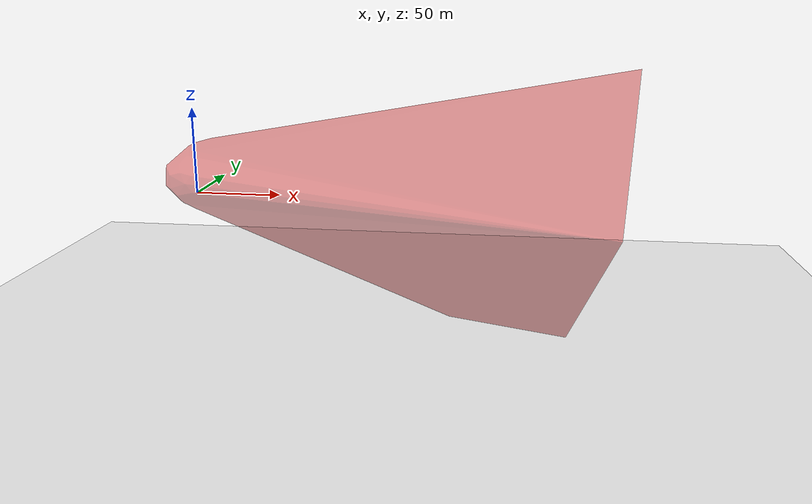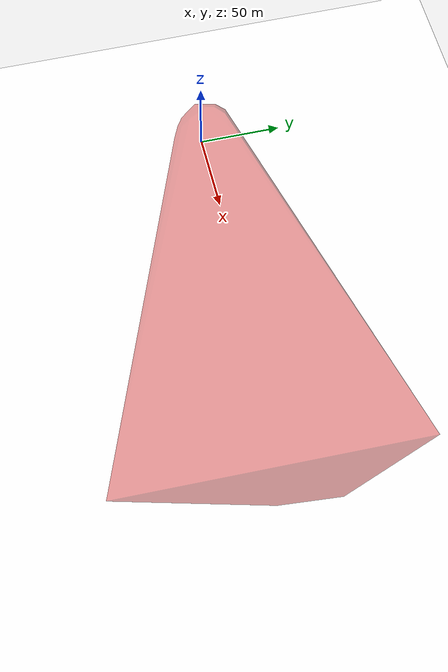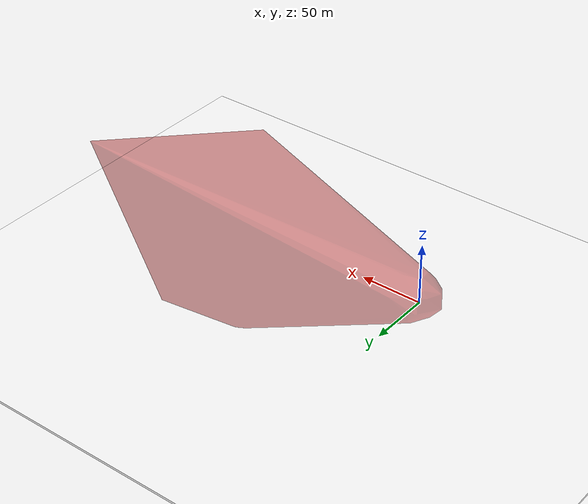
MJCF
<mujoco>
    <option density="1.2" viscosity="2e-05" wind="0 0 0"/>
    <worldbody>
        <light name="top" pos="0 0 5"/>
        <!-- Body -->

    <body name="body" pos="0 0 1" euler="0 0 0">
        <freejoint/>
        <!-- Main Wing -->
        <geom name="stl-wing"  density="1.67" rgba="0.8 0.2 0.2 0.5" type="mesh" mesh="stl-wing-mesh"/>
        <camera name="fixed" pos="-100 -100 -10" xyaxes="1 0 0 0 1 2"/>
        <camera name="track" pos="0 0 0" xyaxes="1 2 0 0 1 2" mode="track"/>
    </body>

        <!-- Landing Platform -->
        <body name="platform" pos="0 0 0">
            <geom name="platform-geom" type="box" size="1500 1500 1" rgba="1 1 1 1" pos="0 0 -80"/>
        </body>
    </worldbody>

            <asset>
                <mesh name="stl-wing-mesh" vertex="1.1249999999999996 -1.5750000000000006 10.124999999999991 1.6750000000000007 -2.475000000000001 -6.524999999999997 4.925000000000001 0.2249999999999995 -0.6749999999999996 -4.875000000000001 -0.2250000000000005 0.6750000000000004 6.024999999999997 -6.0749999999999975 4.725 11.974999999999989 -5.624999999999998 -6.0749999999999975 -0.17499999999999802 -8.224999999999994 -6.074999999999998 214.9249999999965 31.025000000000077 -110.9249999999991 29.075000000000067 7.724999999999994 -5.624999999999998 -7.3749999999999964 10.974999999999989 19.125 9.724999999999993 -1.525 -11.024999999999991 1.5249999999999986 2.0750000000000006 10.57499999999999 35.175000000000104 24.57500000000004 10.124999999999993 -9.024999999999995 -8.274999999999995 4.725 -10.47499999999999 4.775 2.9250000000000003 2.025 7.024999999999997 12.374999999999988 16.424999999999983 -2.0750000000000015 2.925000000000001 11.47499999999999 3.2249999999999996 2.025 2.475 -3.6250000000000027 -2.925000000000001 -3.8250000000000024 -0.12499999999999908 -5.624999999999998 -1.1249999999999996 -4.725 -7.374999999999996 -0.5749999999999995 9.224999999999993 1.1749999999999994 6.724999999999996 13.724999999999987 10.174999999999992 -5.325 7.874999999999995 -1.0749999999999997 4.674999999999999 -0.2250000000000004 13.774999999999986 9.724999999999993 -2.025 -10.074999999999992 1.6250000000000004 -6.424999999999997 -4.675 15.574999999999985 -11.274999999999991 3.4250000000000003 20.07500000000001 0.07499999999999893 0.27500000000000036 5.225000000000001 0.6249999999999984 10.624999999999991 -4.2250000000000005 -2.4250000000000003 -2.4250000000000003 14.574999999999983 7.024999999999997 2.525000000000001 1.4249999999999994 4.775 0.7250000000000003 5.824999999999999 -11.424999999999992 10.174999999999992 5.275 2.0750000000000006 -4.2250000000000005 -5.624999999999999 12.874999999999988 8.824999999999994 -7.874999999999995 17.274999999999988 6.5749999999999975 -0.6749999999999996 16.274999999999984 -5.125 -9.674999999999992 -0.9250000000000008 1.1750000000000003 3.3750000000000013 -2.3749999999999996 4.325000000000001 2.025 8.774999999999993 -10.47499999999999 -0.5749999999999995 1.5749999999999997 6.174999999999999 11.674999999999988 11.924999999999988 -7.774999999999995 -5.325000000000001 6.074999999999999 -4.625 18.624999999999996 -3.375000000000002 7.0749999999999975 9.724999999999993 11.024999999999991 10.674999999999992 4.775 1.225 6.174999999999999 10.624999999999991 -3.1750000000000016 6.174999999999998 3.8750000000000004 4.125 -1.4749999999999996 4.775 6.024999999999997 8.424999999999995 -6.924999999999997 -8.274999999999995 17.424999999999994 1.5249999999999986 -8.274999999999995 -0.5749999999999995 0.07499999999999893 13.324999999999989 -9.124999999999993 -0.47500000000000075 14.674999999999986 17.424999999999994 0.3250000000000005 0.27500000000000024 4.825 0.22499999999999862 14.224999999999985 -9.124999999999993 2.475 14.574999999999983 -3.7250000000000005 -4.725 0.9749999999999989 21.47500000000002 -15.974999999999985 5.8249999999999975 6.624999999999998 6.974999999999998 -16.324999999999985 11.57499999999999 9.674999999999992 9.674999999999994 1.725 1.225000000000001 4.725 -7.274999999999997 8.974999999999993 6.974999999999996 16.574999999999985 20.32500000000001 -1.1250000000000004 -11.77499999999999 -0.7250000000000012 -0.6749999999999996 13.874999999999986 -6.024999999999998 1.5750000000000006 2.1750000000000003 11.97499999999999 -0.5749999999999986 -6.8249999999999975 1.1750000000000003 -6.324999999999998 -4.125000000000001 -12.774999999999988 1.8749999999999991 -5.0249999999999995 6.5749999999999975 6.474999999999996 3.975000000000001 -1.975 -5.125 3.0750000000000006 -6.574999999999999 9.724999999999994 3.975000000000001 -1.2750000000000012 -1.525 -9.524999999999993 10.77499999999999 11.07499999999999 -0.5249999999999998 20.575000000000014 -1.975000000000001 -10.874999999999991 -2.475 11.524999999999991 7.1249999999999964 13.274999999999986 -12.87499999999999 -5.474999999999999 -13.724999999999985 4.125 3.0750000000000006 -3.3750000000000013 8.074999999999994 26.025000000000045 2.925000000000002 10.224999999999993 0.3749999999999999 -4.7250000000000005 -4.725 3.575 -8.674999999999994 -8.774999999999993 5.374999999999999 4.924999999999999 -4.725 -4.975 12.674999999999988 -3.8250000000000015 7.174999999999997 -1.6250000000000022 -1.1249999999999996 -9.024999999999995 18.275 4.725 -2.2750000000000012 -1.525 7.524999999999997 9.874999999999991 3.8750000000000013 -4.075000000000001 -4.525000000000002 3.8750000000000013 15.374999999999984 4.025 41.675000000000146 -4.775000000000001 -5.874999999999998 2.0750000000000006 2.975000000000001 17.974999999999994 -4.775000000000001 16.024999999999984 13.024999999999988 -8.024999999999997 6.124999999999998 -4.525000000000001 -7.674999999999997 0.27500000000000036 6.274999999999997 0.32500000000000007 11.97499999999999 -2.2750000000000012 15.974999999999982 15.124999999999986 -9.024999999999995 1.1249999999999996 -1.6250000000000018 5.8249999999999975 3.375000000000002 -1.2750000000000012 -0.47500000000000087 2.0250000000000017 0.8749999999999991 -9.024999999999995 -2.475000000000001 9.324999999999994 6.274999999999997 11.924999999999988 -2.0250000000000017 -0.8750000000000001 3.0250000000000017 11.924999999999988 12.17499999999999 14.374999999999986 5.624999999999998 -8.974999999999994 1.424999999999999 0.22499999999999962 0.475 1.5249999999999986 2.475 3.1750000000000007 14.224999999999985 8.324999999999994 0.47499999999999987 18.275 4.825000000000001 -8.974999999999994 18.725 -14.874999999999986 -1.7750000000000012 -18.174999999999997 0.07499999999999893 14.874999999999986 13.324999999999989 11.424999999999988 -16.174999999999983 7.474999999999996 14.674999999999985 1.8250000000000002 12.324999999999987 4.775 -9.874999999999993 4.574999999999999 4.775 6.3249999999999975 10.77499999999999 -3.775000000000001 10.82499999999999 7.974999999999996 9.274999999999993 -2.6750000000000016 17.324999999999992 10.174999999999992 11.724999999999989 -3.8250000000000006 10.974999999999989 0.024999999999999967 15.074999999999983 3.2249999999999996 9.474999999999993 11.924999999999988 -18.474999999999998 9.024999999999993 11.474999999999989 22.825000000000028 11.724999999999989 6.524999999999997 9.674999999999992 -8.924999999999995 4.375000000000001 0.2250000000000004 -9.824999999999994 -1.375 -1.1250000000000004 12.674999999999986 -6.224999999999999 4.275 12.224999999999987 -8.824999999999996 13.274999999999986 4.574999999999999 -0.6249999999999998 -1.1250000000000004 15.374999999999984 20.07500000000001 16.524999999999988 4.125 -9.174999999999994 -3.625000000000001 -5.325 9.724999999999993 -5.325000000000001 4.574999999999999 -10.524999999999991 18.174999999999994 4.125 8.374999999999995 14.674999999999985 14.024999999999984 4.225 11.524999999999991 14.924999999999983 -10.274999999999993 -1.0749999999999997 -2.6250000000000018 -0.47500000000000087 -6.474999999999998 -5.7749999999999995 -4.175000000000001 17.824999999999996 5.924999999999997 -5.174999999999999 6.124999999999998 9.524999999999991 -5.624999999999999 -8.374999999999996 4.125 -5.624999999999998 10.87499999999999 10.874999999999991 -2.475 7.624999999999995 -2.6250000000000013 -1.5749999999999997 5.725 4.125 -4.275000000000001 -10.57499999999999 -1.6750000000000016 -5.074999999999999 6.974999999999996 6.874999999999996 7.624999999999995 -9.224999999999994 1.4749999999999996 -9.824999999999994 -4.275 5.974999999999998 0.17499999999999846 -4.725 5.524999999999998 21.42500000000002 15.524999999999983 24.425000000000036 4.325000000000001 -3.2750000000000004 22.175000000000022 6.124999999999998 5.8249999999999975 0.12499999999999908 26.825000000000053 1.8749999999999982 17.22499999999999 12.424999999999988 8.724999999999993 1.4749999999999996 14.674999999999986 9.724999999999993 0.12499999999999906 32.57500000000008 14.674999999999985 18.124999999999996 7.724999999999996 8.374999999999995 3.7249999999999996 20.22500000000001 -8.274999999999995 4.625 -1.9249999999999998 3.425000000000001 -6.624999999999998 -4.725000000000001 1.1750000000000003 -0.7750000000000005 2.0250000000000017 -10.174999999999994 -0.7750000000000009 -2.025000000000001 -3.0750000000000015 1.0249999999999986 7.424999999999995 4.475 1.4749999999999996 0.2249999999999995 -4.175000000000001 -9.774999999999993 2.9250000000000003 -8.324999999999994 4.674999999999999 -1.025 -1.1249999999999996 15.024999999999983 -7.674999999999997 5.174999999999999 -0.2750000000000017 -4.875000000000002 0.2250000000000004 -3.875000000000002 -2.975000000000002 14.174999999999985 6.474999999999996 10.174999999999992 3.3750000000000013 10.974999999999989 3.425000000000001 -5.074999999999999 -6.574999999999999 -13.224999999999987 -0.024999999999999856 5.5749999999999975 8.374999999999995 -11.174999999999994 5.124999999999998 -1.0749999999999997 3.7749999999999995 4.674999999999999 -7.824999999999996 -4.675 3.7749999999999995 -2.9750000000000023 12.874999999999988 8.724999999999993 11.77499999999999 -6.474999999999997 10.07499999999999 1.7749999999999995 6.5749999999999975 9.624999999999991 -2.375 -6.924999999999996 -7.024999999999999 -9.674999999999992 2.0750000000000006 0.17499999999999846 -12.374999999999988 4.674999999999999 -5.675 -4.725 -4.4250000000000025 6.024999999999997 10.57499999999999 20.22500000000001 7.374999999999995 19.575000000000003 9.324999999999994 14.124999999999984 5.175 13.724999999999985 5.174999999999999 -12.724999999999989 4.275 5.174999999999999 -0.9249999999999999 -8.324999999999994 3.3750000000000004 -2.175000000000001 -2.474999999999999 17.77499999999999 5.124999999999998 -12.374999999999988 1.5749999999999997 -3.775000000000001 -6.524999999999999 3.3750000000000004 15.124999999999986 -6.8749999999999964 -1.1250000000000004 -6.924999999999997 8.074999999999994 2.9250000000000003 -7.824999999999996 1.4249999999999994 4.275 22.325000000000024 5.124999999999997 -5.175000000000001 9.274999999999993 3.8750000000000013 15.524999999999983 11.424999999999988 -8.274999999999995 -1.1250000000000004 -6.674999999999998 -4.2250000000000005 -6.524999999999999 -0.47500000000000087 3.8750000000000013 6.524999999999997 17.424999999999994 13.774999999999988 4.275 1.5749999999999997 2.975000000000001 10.57499999999999 -1.1250000000000004 -5.225000000000001 -2.025000000000001 3.3750000000000004 -4.875000000000002 -1.1250000000000004 -8.774999999999993 2.2249999999999996 1.1249999999999996 -0.6750000000000005 -16.774999999999988 7.874999999999995 7.424999999999995 -2.925000000000001 -1.0750000000000006 -12.274999999999988 -3.8250000000000006 8.824999999999996 1.7749999999999995 -3.8250000000000024 3.425000000000001 33.825000000000095 -9.224999999999993 7.474999999999996 -6.574999999999999 -4.275 6.124999999999998 7.924999999999995 10.574999999999994 9.274999999999993 -2.425000000000001 2.1250000000000013 4.325000000000001 9.724999999999993 -7.674999999999997 -5.124999999999999 11.07499999999999 -2.1750000000000016 12.42499999999999 2.525 -6.124999999999999 13.324999999999989 2.525000000000001 -1.525 9.274999999999993 26.725000000000044 8.824999999999994 12.42499999999999 3.2249999999999996 10.624999999999991 25.02500000000004 8.524999999999993 3.425000000000001 17.374999999999993 -1.0249999999999995 13.324999999999987 9.274999999999995 3.8250000000000006 15.574999999999985 7.024999999999997 0.2250000000000004 6.024999999999997 3.425000000000001 15.524999999999983 -7.124999999999998 12.87499999999999 17.77499999999999 17.07499999999999 10.624999999999993 8.774999999999993 -4.625 -3.3250000000000006 4.275000000000001 -0.2250000000000005 14.724999999999985 -0.12499999999999953 5.174999999999999 -2.8249999999999997 -0.47500000000000087 -5.175 19.675000000000008 9.074999999999992 7.424999999999995 5.725 6.024999999999997 7.8749999999999964 4.375000000000002 11.974999999999989 -9.224999999999993 3.475000000000002 3.8750000000000013 4.375000000000001 -2.8249999999999993 16.474999999999987 -0.9249999999999999 17.874999999999996 -0.6249999999999997 -12.974999999999989 3.0250000000000017 -7.3749999999999964 -3.875000000000002 -6.424999999999997 -10.97499999999999 12.87499999999999 6.624999999999998 -4.325000000000002 -10.524999999999991 3.925000000000002 5.924999999999997 11.07499999999999 -5.974999999999998 16.174999999999983 8.824999999999996 9.774999999999995 1.225000000000001 4.325000000000001 0.3250000000000014 -8.774999999999993 -9.174999999999994 -1.024999999999999 -1.1250000000000004 -3.875000000000003 10.224999999999993 -6.074999999999998 -2.6250000000000013 8.874999999999995 2.925000000000001 12.574999999999987 8.874999999999995 -6.974999999999996 9.774999999999993 -0.5749999999999986 0.2250000000000005 2.025 9.374999999999995 -1.025 5.624999999999998 24.67500000000004 15.724999999999984 7.874999999999995 18.375 11.32499999999999 1.5750000000000006 16.124999999999986 12.324999999999987 -5.175 -5.474999999999997 -6.924999999999997 -5.624999999999998 17.474999999999994 -8.724999999999994 -1.4749999999999996 8.924999999999995 0.7250000000000003 7.174999999999995 -6.3749999999999964 -1.0749999999999997 3.2249999999999996 -2.3249999999999984 6.124999999999998 6.024999999999997 7.124999999999998 -1.975 6.574999999999999 0.8250000000000021 -4.775000000000001 11.074999999999992 1.7250000000000019 -5.325000000000001 5.674999999999999 8.924999999999997 -5.424999999999999 -1.0749999999999997 -1.8749999999999987 2.1250000000000013 14.674999999999986 2.175000000000002 -2.475 17.824999999999996 11.174999999999992 7.424999999999995 -0.7250000000000011 -9.524999999999991 6.524999999999997 -3.9750000000000028 -3.675 -14.174999999999986 8.974999999999994 4.4250000000000025 1.1250000000000004 11.124999999999991 -2.7749999999999995 4.725 -16.874999999999986 9.424999999999995 2.1250000000000004 -3.8250000000000006 8.074999999999998 6.274999999999998 -1.1250000000000004 6.275 -3.5250000000000026 -1.1249999999999996 5.825000000000001 -2.0750000000000015 11.47499999999999 22.92500000000003 -5.574999999999998 -3.8250000000000006 10.324999999999994 3.8750000000000013 18.775000000000002 5.825000000000001 10.174999999999994 14.374999999999984 9.424999999999995 -1.0750000000000006 2.3249999999999993 13.924999999999988 4.325000000000001 10.07499999999999 14.824999999999987 -6.924999999999996 12.87499999999999 4.025000000000004 -10.624999999999993 15.574999999999985 3.5750000000000037 -7.124999999999998 -9.624999999999993 9.874999999999995 3.125 -2.8750000000000004 -1.8249999999999975 4.825000000000001 9.724999999999993 2.6750000000000034 3.3750000000000013 9.274999999999995 10.774999999999993 11.47499999999999 8.724999999999993 1.7750000000000048 -4.725000000000001 4.125 2.6750000000000034 20.92500000000001 13.024999999999986 13.92499999999999 11.474999999999989 2.5750000000000015 3.5750000000000037 -7.874999999999995 13.274999999999986 -2.674999999999997 0.32500000000000095 7.424999999999995 -4.024999999999999 0.8749999999999992 -1.5749999999999997 9.024999999999997 9.97499999999999 -6.074999999999997 -6.724999999999994 -1.1750000000000016 16.424999999999983 -5.374999999999996 231.57499999999607 -105.97499999999923 9.024999999999997 -0.17499999999999966 5.275 0.02500000000000352 -0.17499999999999977 15.274999999999984 20.275000000000013 -0.6249999999999998 8.174999999999994 -1.3249999999999966 -9.624999999999993 14.124999999999984 4.525000000000004 8.374999999999995 12.874999999999988 4.975000000000003 -6.574999999999999 11.07499999999999 18.475 -4.875000000000002 9.274999999999993 14.42499999999999 -1.825000000000001 -6.474999999999997 -4.924999999999997 8.874999999999995 21.87500000000002 11.274999999999993 -9.674999999999992 -3.3250000000000006 4.975000000000003 7.8749999999999964 14.574999999999983 8.124999999999998 11.47499999999999 14.024999999999986 14.42499999999999 10.574999999999992 2.6750000000000007 12.174999999999992 5.624999999999999 -7.324999999999996 -3.1249999999999973 -3.8250000000000006 -0.2250000000000005 9.524999999999997 1.6750000000000012 14.624999999999984 11.774999999999993 -1.825000000000001 2.0250000000000017 -5.774999999999995 6.3749999999999964 6.0749999999999975 23.475000000000033 7.824999999999994 -2.925000000000001 0.9750000000000042 5.674999999999999 -5.174999999999999 -6.224999999999994 8.824999999999994 -3.2750000000000004 2.775000000000005 -5.574999999999999 13.924999999999985 3.225000000000005 10.174999999999994 15.374999999999984 11.324999999999994 11.974999999999989 0.17499999999999846 11.774999999999993 -5.574999999999998 2.975000000000001 14.02499999999999 18.174999999999994 13.324999999999987 8.624999999999998 1.424999999999999 8.374999999999995 -15.22499999999998 15.274999999999984 2.525000000000001 15.374999999999988 -1.4749999999999992 11.52499999999999 15.374999999999988 2.9250000000000003 -3.3250000000000015 9.524999999999997 -1.5750000000000006 11.874999999999988 2.3250000000000046 4.275000000000001 4.574999999999999 24.825000000000042 -8.774999999999993 17.52499999999999 15.824999999999987 11.924999999999988 -0.575 -11.174999999999986 -9.674999999999992 9.674999999999992 10.924999999999995 8.874999999999995 9.674999999999992 2.8250000000000055 -0.9250000000000008 0.6749999999999996 20.825000000000017 12.224999999999987 -1.5749999999999997 5.975000000000003 -0.2750000000000016 10.124999999999991 19.025000000000006 0.7250000000000003 6.524999999999997 11.824999999999994 16.024999999999984 13.824999999999989 30.72500000000008 11.97499999999999 16.174999999999983 8.225 2.0750000000000006 13.124999999999986 7.775 7.024999999999996 10.974999999999989 19.025000000000006 0.7250000000000003 2.0750000000000006 4.175000000000006 10.07499999999999 0.7250000000000002 -2.124999999999995 -5.325 3.425000000000001 4.625000000000005 -10.824999999999992 8.824999999999994 19.47500000000001 1.225000000000001 0.27500000000000036 12.724999999999993 -3.3750000000000004 -8.274999999999995 -0.7749999999999951 -3.8250000000000006 -0.7250000000000016 1.0250000000000048 15.974999999999982 1.424999999999999 -5.274999999999994 16.874999999999986 -0.025000000000000744 15.424999999999988 -3.3750000000000004 -8.224999999999994 17.674999999999997 3.3750000000000004 2.475 -0.7249999999999941 -10.92499999999999 11.02499999999999 4.225000000000007 -0.024999999999999856 2.025000000000001 4.225000000000007 -12.074999999999992 2.025000000000001 11.424999999999995 3.3249999999999997 8.774999999999993 13.224999999999993 17.824999999999996 10.574999999999992 23.125000000000032 -4.225000000000001 8.424999999999995 13.224999999999993 13.774999999999986 12.574999999999987 14.124999999999991 2.975000000000001 0.07499999999999893 -8.37499999999999 -16.374999999999986 1.9749999999999988 -0.724999999999994 -4.2250000000000005 9.724999999999993 2.8750000000000067 4.225 11.52499999999999 8.725 -8.924999999999995 5.225000000000001 20.875000000000018 7.624999999999995 -0.6249999999999998 8.275 -3.2749999999999995 4.325000000000001 10.974999999999996 -11.02499999999999 -5.574999999999998 13.674999999999992 29.475000000000065 10.974999999999989 -9.274999999999988 -1.5750000000000006 16.724999999999987 10.974999999999996 -0.22499999999999962 8.524999999999993 18.175 6.524999999999997 7.524999999999997 -8.37499999999999 11.02499999999999 4.725 -0.6749999999999942 0.7750000000000009 -11.02499999999999 16.42499999999999 3.575 9.224999999999994 12.374999999999995 8.624999999999993 2.475 1.5750000000000068 1.5249999999999977 4.275000000000001 11.474999999999996 -1.975000000000001 -7.424999999999997 3.3750000000000075 -2.8750000000000004 -0.12499999999999953 1.5750000000000068 7.024999999999997 8.074999999999996 8.325000000000001 12.87499999999999 20.775000000000013 10.574999999999998 13.774999999999988 6.474999999999996 9.674999999999999 -1.525 6.574999999999999 14.624999999999991 -3.875000000000003 10.174999999999992 25.87500000000005 4.125 4.775 -0.6749999999999934 2.675 11.97499999999999 -9.224999999999987 1.6750000000000007 0.7249999999999994 6.075000000000005 -6.0749999999999975 -8.274999999999995 4.2750000000000075 -5.624999999999998 -11.074999999999992 6.975000000000003 -3.8250000000000006 -0.8250000000000012 2.025000000000007 9.224999999999993 -11.274999999999991 3.8250000000000077 16.424999999999986 -6.8749999999999964 -7.42499999999999 -8.324999999999996 3.3750000000000013 9.275 2.1250000000000013 -10.57499999999999 11.075 9.424999999999992 -6.524999999999999 -3.3249999999999935 9.524999999999991 -15.524999999999983 6.575000000000005 2.8749999999999996 7.8749999999999964 9.725 30.875000000000078 20.92500000000001 0.725000000000007 -7.824999999999996 0.32500000000000095 16.02499999999999 2.975000000000001 16.624999999999986 2.525000000000008 2.0750000000000006 -1.2750000000000008 18.72500000000001 6.574999999999997 13.224999999999985 7.9250000000000025 5.225 -0.17499999999999966 8.375000000000002 15.474999999999982 15.574999999999985 19.625000000000014 11.324999999999989 14.224999999999987 18.275000000000006 1.3249999999999993 -2.4250000000000003 3.4250000000000083 7.524999999999997 11.07499999999999 22.775000000000034 1.5749999999999997 7.924999999999995 16.474999999999994 2.025 9.174999999999992 2.0750000000000095 -2.025 0.5250000000000007 16.924999999999997 -12.824999999999987 -8.124999999999995 2.975000000000008 4.275 1.225000000000001 13.324999999999996 3.8250000000000006 -17.32499999999999 3.025000000000009 -9.124999999999993 7.424999999999995 1.225000000000008 4.924999999999999 4.725 11.124999999999998 6.3749999999999964 -5.174999999999999 21.475000000000026 13.224999999999985 14.174999999999985 -2.374999999999992 -13.674999999999986 11.02499999999999 15.174999999999994 12.874999999999988 -5.525 10.675 3.425000000000001 -1.3749999999999991 16.074999999999992 15.124999999999984 16.724999999999987 23.275000000000038 -6.924999999999997 5.124999999999998 20.125000000000018 7.924999999999995 -2.4250000000000003 24.625000000000046 5.5749999999999975 0.27500000000000036 18.325000000000006 5.024999999999999 13.324999999999989 4.825000000000008 6.724999999999996 -5.124999999999999 4.825000000000008 12.924999999999988 -9.624999999999993 4.375000000000009 -2.9250000000000003 9.274999999999993 27.325000000000063 -11.474999999999989 14.124999999999984 0.7750000000000076 4.725000000000001 11.324999999999989 -3.7249999999999934 -8.774999999999993 -0.024999999999999856 11.575 9.674999999999992 -5.074999999999999 -8.224999999999987 -5.624999999999998 -6.524999999999997 3.0750000000000095 5.275 3.3750000000000013 7.125000000000007 9.424999999999992 11.474999999999989 9.375000000000004 -4.875000000000001 9.674999999999992 10.725 -0.2750000000000017 1.5749999999999997 4.42500000000001 -5.124999999999999 -5.175000000000001 19.275000000000013 7.924999999999995 -0.575 8.925000000000002 10.174999999999992 -1.375 18.82500000000001 5.674999999999999 8.174999999999995 -0.9749999999999913 3.425000000000001 -17.824999999999996 12.974999999999998 1.6249999999999996 8.824999999999994 13.874999999999996 6.924999999999995 -10.97499999999999 18.82500000000001 -3.975000000000002 2.525000000000001 19.275000000000013 14.374999999999984 10.174999999999994 19.725000000000016 -6.8749999999999964 -0.17499999999999968 9.375000000000004 5.174999999999999 6.5749999999999975 19.725000000000016 2.9250000000000003 1.5249999999999986 21.075000000000024 -12.374999999999988 -9.824999999999994 11.174999999999999 10.124999999999991 20.67500000000001 7.125000000000005 -1.1249999999999996 0.3250000000000005 14.324999999999996 6.974999999999996 -12.37499999999999 0.4250000000000098 10.224999999999993 12.374999999999988 26.075000000000056 14.824999999999985 3.3750000000000004 -2.2749999999999906 -10.274999999999993 -5.174999999999999 8.975000000000005 8.724999999999993 9.674999999999992 7.175000000000006 3.425000000000001 -7.424999999999995 4.025000000000011 20.975000000000016 -2.375 -2.2749999999999906 16.92499999999999 -4.9750000000000005 16.624999999999996 2.525000000000001 1.424999999999999 13.924999999999995 25.02500000000004 5.5749999999999975 18.87500000000001 -2.8750000000000004 12.87499999999999 -1.3749999999999885 -14.674999999999986 1.6250000000000004 7.625000000000005 -5.775 -4.675 12.124999999999998 19.325000000000003 7.024999999999997 17.975000000000005 -2.375 11.07499999999999 -0.4749999999999901 1.5749999999999997 11.074999999999992 7.175000000000006 4.275 11.874999999999988 4.47500000000001 -4.275000000000001 -4.875000000000002 9.875000000000002 18.224999999999994 -5.874999999999998 6.7250000000000085 -14.624999999999984 3.025000000000001 8.075000000000005 0.22499999999999962 2.475 9.025000000000004 2.1250000000000013 -2.9250000000000003 24.325000000000045 3.125 9.224999999999994 5.875000000000011 29.77500000000007 -2.475000000000001 16.224999999999994 7.824999999999994 -10.57499999999999 11.275000000000002 22.325000000000024 -3.3750000000000004 22.975000000000037 5.674999999999999 19.225000000000005 2.725000000000011 17.824999999999996 8.524999999999993 3.175000000000013 -5.124999999999999 -4.875000000000001 8.575000000000005 5.225 14.124999999999984 29.275000000000077 260.3749999999959 63.725000000000286 68.42500000000018 8.724999999999993 -8.274999999999995 17.125 -6.674999999999998 16.92499999999999 10.825000000000003 15.274999999999984 -11.87499999999999 9.475000000000005 10.224999999999993 19.175000000000004 10.825000000000001 -2.025000000000001 -7.374999999999996 0.9250000000000106 24.975000000000037 -6.124999999999999 9.025000000000006 5.624999999999998 1.8749999999999991 17.125 7.424999999999995 -0.47500000000000075 10.375000000000004 20.025000000000006 -3.2749999999999995 12.625 -9.224999999999993 4.275000000000001 12.225 13.37499999999999 -12.374999999999988 15.824999999999994 -3.1750000000000025 -6.074999999999998 21.67500000000003 16.274999999999984 -4.275 7.725000000000007 3.7749999999999995 -0.2250000000000004 -8.024999999999984 -2.4250000000000003 -3.3750000000000013 23.47500000000004 7.924999999999997 -2.825 -9.374999999999982 13.774999999999986 1.7750000000000004 9.075000000000005 -0.17499999999999966 1.4249999999999994 6.375000000000009 9.274999999999995 9.174999999999992 18.52500000000001 5.674999999999999 10.174999999999992 5.92500000000001 10.07499999999999 11.97499999999999 10.875000000000002 -0.37500000000000167 15.124999999999986 10.425000000000002 -8.124999999999996 2.975000000000001 7.2750000000000075 2.1250000000000004 7.924999999999995 -0.8249999999999883 2.475 14.224999999999987 -4.8749999999999885 -0.2250000000000005 -1.1750000000000016 4.575000000000012 18.224999999999994 -6.674999999999999 11.775 -6.974999999999998 3.575 18.52500000000001 6.0749999999999975 4.3750000000000036 20.775000000000023 -19.575000000000003 0.6750000000000005 2.3750000000000124 6.174999999999998 6.974999999999996 3.275000000000013 -9.474999999999994 -7.424999999999995 12.275 -1.2750000000000012 -3.3750000000000013 5.525000000000011 24.925000000000036 5.624999999999998 5.97500000000001 2.0750000000000006 4.2749999999999995 21.72500000000003 19.625000000000007 -1.4749999999999992 19.475000000000016 19.175000000000004 4.924999999999999 18.57500000000001 0.27500000000000036 2.7749999999999995 7.7750000000000075 10.174999999999992 -2.5250000000000026 18.125000000000007 19.625000000000007 11.07499999999999 7.7750000000000075 12.774999999999986 5.674999999999999 16.324999999999996 8.624999999999993 12.874999999999988 -10.22499999999998 -3.1750000000000016 12.874999999999988 -4.3749999999999885 2.5750000000000015 7.024999999999997 7.7750000000000075 10.57499999999999 6.574999999999999 11.375000000000002 -1.5749999999999997 12.324999999999987 8.225000000000007 -3.8250000000000006 9.97499999999999 19.025000000000013 4.275 -5.874999999999998 14.524999999999997 9.224999999999993 7.524999999999997 5.075000000000012 1.5749999999999997 -14.624999999999984 9.175000000000006 1.6750000000000003 -7.424999999999995 7.825000000000008 -1.3750000000000009 -6.0749999999999975 15.474999999999996 0.5249999999999994 3.8250000000000015 19.525000000000016 8.724999999999993 3.3750000000000004 -6.124999999999986 -4.2250000000000005 -14.174999999999985 13.674999999999999 -5.125 0.32500000000000095 16.825 -1.5250000000000008 6.724999999999998 5.575000000000012 -1.0749999999999997 -7.124999999999998 22.225000000000033 7.024999999999997 -2.975000000000002 8.275000000000007 7.024999999999997 15.574999999999985 17.275000000000002 -11.97499999999999 -3.3250000000000006 14.574999999999998 -0.37500000000000167 7.474999999999996 15.924999999999995 24.275000000000034 2.975000000000001 16.374999999999996 -6.424999999999997 -6.024999999999999 9.625000000000005 -8.774999999999993 18.725 3.325000000000014 15.524999999999983 2.8749999999999996 13.225 1.1249999999999996 14.024999999999986 15.024999999999997 -8.324999999999994 8.524999999999993 21.325000000000028 -3.3750000000000013 3.025000000000001 19.075000000000014 10.574999999999992 -2.925000000000001 12.825000000000001 -2.375 -11.47499999999999 7.42500000000001 4.025 15.524999999999983 20.925000000000026 3.675 -4.275 19.125000000000014 15.024999999999983 3.3750000000000004 13.725 8.374999999999995 -11.02499999999999 15.524999999999997 -1.525 6.624999999999998 5.175000000000013 -3.3250000000000015 4.4750000000000005 11.925000000000002 0.27500000000000036 -12.52499999999999 18.22500000000001 7.924999999999995 6.024999999999997 18.22500000000001 -6.924999999999997 3.425000000000001 20.475000000000023 -0.27500000000000213 -10.97499999999999 15.524999999999997 10.87499999999999 20.975000000000016 1.1250000000000138 5.8249999999999975 13.774999999999986 20.475000000000023 4.375000000000001 -4.675 16.875 1.1250000000000004 -8.274999999999995 5.625000000000012 0.2250000000000005 10.07499999999999 12.375000000000002 5.624999999999998 -1.7250000000000014 13.725 -2.9250000000000003 -1.825000000000001 13.725 21.375000000000014 1.2250000000000005 10.575000000000005 -3.3750000000000004 -3.8250000000000015 14.675 -0.12499999999999994 18.224999999999994 9.275000000000007 -1.3749999999999991 4.725 0.27500000000001634 14.024999999999986 -11.024999999999991 17.375000000000007 14.124999999999984 6.524999999999997 22.77500000000004 18.275 0.2250000000000005 26.825000000000067 17.374999999999993 10.674999999999994 -11.874999999999975 4.775 10.774999999999991 22.32500000000004 5.225000000000001 4.125 15.575 10.624999999999993 -2.9750000000000028 5.225000000000016 20.975000000000016 -0.17499999999999968 2.975000000000017 8.274999999999993 -5.574999999999998 12.875000000000004 -8.474999999999996 4.775 8.82500000000001 -5.425000000000001 4.775 25.92500000000006 -2.825 -4.675 7.025000000000013 -2.025 -1.0749999999999997 2.075000000000015 -3.8250000000000006 19.075 -0.6249999999999856 2.9250000000000003 7.724999999999994 25.92500000000006 -5.174999999999999 -3.625000000000001 11.075000000000006 14.624999999999984 -5.524999999999999 18.275000000000013 -2.925000000000001 -5.624999999999998 21.02500000000003 -1.0249999999999986 -6.0749999999999975 21.02500000000003 -5.875 -7.8749999999999964 2.5750000000000157 23.025000000000027 1.5749999999999997 14.275000000000002 0.17499999999999877 2.025 6.175000000000013 -0.6249999999999998 -8.324999999999994 14.725000000000001 24.57500000000004 -15.424999999999985 18.775000000000016 0.7250000000000003 5.374999999999998 11.125000000000007 11.97499999999999 0.9749999999999989 0.32500000000001694 0.27499999999999936 -6.125 6.175000000000013 1.1750000000000003 17.374999999999993 5.725000000000014 5.124999999999998 10.174999999999992 -1.4749999999999832 2.7749999999999995 11.07499999999999 4.375000000000017 8.974999999999993 -2.8750000000000004 -6.424999999999981 12.924999999999988 12.424999999999988 14.275000000000002 -10.124999999999993 11.52499999999999 21.02500000000003 7.424999999999995 8.724999999999993 23.275000000000045 -2.9250000000000003 7.274999999999995 21.475000000000033 -6.0749999999999975 8.074999999999996 13.375000000000004 -1.5749999999999997 -1.0249999999999986 5.725000000000016 16.874999999999986 -3.8250000000000006 4.875000000000018 0.32500000000000095 14.624999999999986 13.875000000000002 7.624999999999995 8.774999999999993 6.675000000000015 -10.274999999999993 3.3750000000000013 12.075000000000005 19.075 -8.324999999999994 7.125000000000014 -5.574999999999999 7.874999999999995 14.775000000000002 19.625000000000007 19.225000000000005 13.875000000000004 8.824999999999994 12.574999999999987 -7.274999999999979 1.6250000000000004 14.024999999999984 20.62500000000003 8.824999999999994 5.5749999999999975 -3.2249999999999854 13.774999999999986 2.525000000000001 22.875000000000043 11.424999999999988 1.1750000000000003 22.875000000000043 7.724999999999994 2.525000000000001 8.475000000000012 -17.12499999999999 4.325000000000001 8.925000000000011 12.47499999999999 -3.7750000000000017 20.62500000000003 14.624999999999984 -19.525000000000006 2.625000000000018 -5.175000000000001 11.424999999999988 6.225000000000016 -2.475 10.87499999999999 19.27500000000002 1.1249999999999996 3.125 26.025000000000063 -2.025 7.524999999999997 4.875000000000018 4.275000000000001 1.1250000000000004 7.824999999999996 0.2250000000000004 -11.924999999999988 14.825000000000003"/>
            </asset>
</mujoco>
